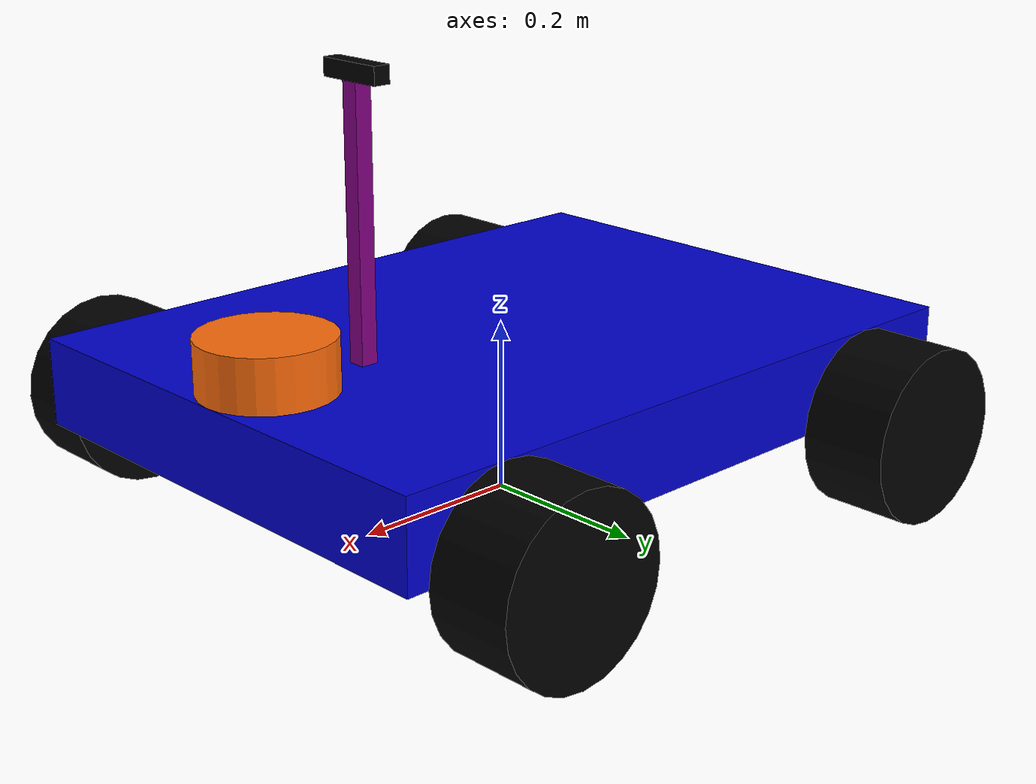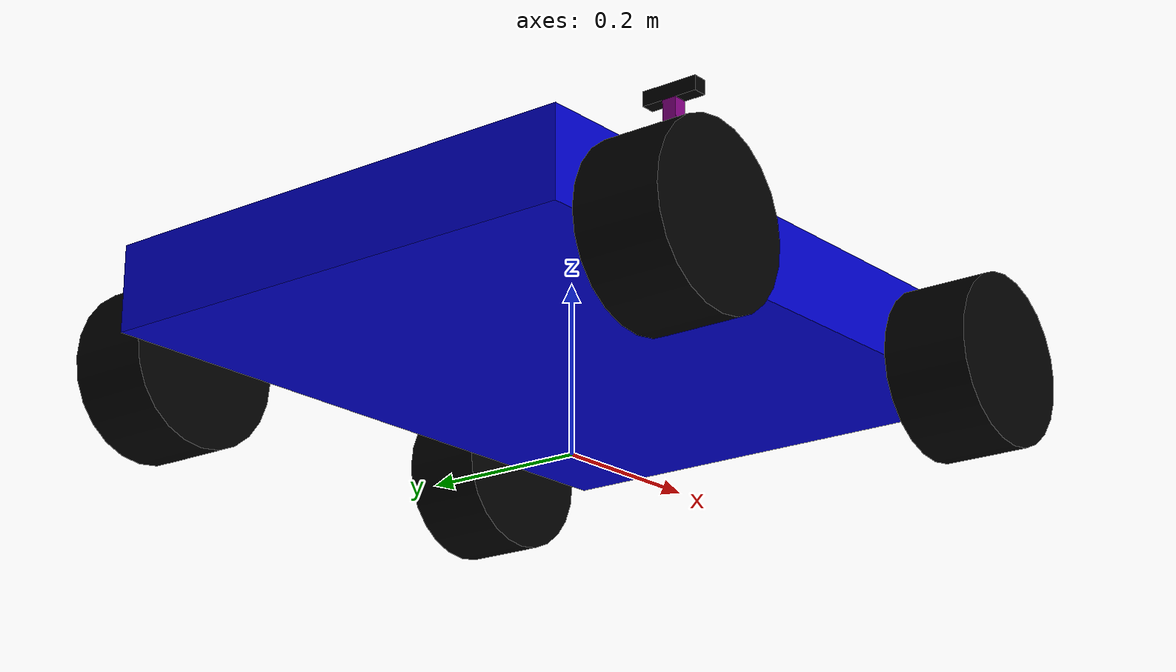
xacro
<?xml version="1.0"?>
<robot xmlns:xacro="http://www.ros.org/wiki/xacro" name="atreus">

<!--................................ XACRO CONSTANTS .............................. -->

<xacro:property name="chassis_height"                       value="0.1"/>
<xacro:property name="chassis_length"                       value="0.8"/>
<xacro:property name="chassis_width"                        value="0.6"/>
<xacro:property name="chassis_mass"                         value="10"/>

<xacro:property name="wheel_mass"                           value="1"/>
<xacro:property name="wheel_radius"                         value="0.1"/>
<xacro:property name="wheel_width"                          value="0.1"/>
<xacro:property name="wheel_pos"                            value="-0.175"/>
<xacro:property name="wheel_torque"                         value="100"/>

<xacro:arg      name="camera_enabled"                 		  default="true"/>
<xacro:property name="camera_height"                  		  value="0.3"/>
<xacro:property name="camera_horizontal_fov"          		  value="60"/>

<xacro:arg      name="two_d_lidar_enabled"                  default="true" />
<xacro:property name="two_d_lidar_update_rate"              value="50"/>
<xacro:property name="two_d_lidar_sample_size"              value="151"/>
<xacro:property name="two_d_lidar_min_angle"                value="-180"/>
<xacro:property name="two_d_lidar_max_angle"                value="180"/>
<xacro:property name="two_d_lidar_min_range"                value="0.1"/>
<xacro:property name="two_d_lidar_max_range"                value="16"/>

<!--................................ META CONSTANTS ................................ -->

<!-- Z distance to centre of the robot -->
<xacro:property name="chassis_ground_clearance"             value="${0.1+chassis_height/2}"/>
<xacro:property name="wheel_base"                           value="${wheel_pos-chassis_length/4+wheel_radius}"/>
<xacro:property name="wheel_separation"                     value="${wheel_width+chassis_width}"/>

<!-- ............................... LOAD MACROS ................................. -->

<xacro:include filename="$(find atreus)/urdf/atreus.gazebo.xacro"/>
<xacro:include filename="$(find atreus)/urdf/materials.xacro"/>
<xacro:include filename="$(find atreus)/urdf/macros.xacro"/>

<!-- ................................ BASE LINK .................................. -->

<link name="base_link">

  <collision name='collision'>
    <origin xyz="0 0 ${chassis_ground_clearance}" rpy="0 0 0" />
      <geometry>
        <box size="${chassis_length} ${chassis_width} ${chassis_height}"/>
      </geometry>
  </collision>

  <visual>
    <origin xyz="0 0 ${chassis_ground_clearance}" rpy="0 0 0" />
      <geometry>
        <box size="${chassis_length} ${chassis_width} ${chassis_height}"/>
      </geometry>
      <material name="blue"/>
  </visual>

  <inertial>
      <mass value="${chassis_mass}"/>
      <xacro:box_inertia m="${chassis_mass}" x="${chassis_length}" y="${chassis_width}" z = "${chassis_height}"/>
  </inertial>
</link>

<gazebo reference="base_link">
   <material>Gazebo/Blue</material>
</gazebo>

<!-- ................................ WHEELS ..................................... -->

<xacro:wheel cardinality="front" dexterity="left"  fb="-1"  lr ="1" />
<xacro:wheel cardinality="front" dexterity="right" fb="-1"  lr="-1" />
<xacro:wheel cardinality="back"  dexterity="left"  fb= "1"  lr ="1" />
<xacro:wheel cardinality="back"  dexterity="right" fb= "1"  lr="-1" />

<!-- ................................ CAMERA ..................................... -->

<xacro:if value="$(arg camera_enabled)">

  <!-- CAMERA HOLDER -->
  <link name="camera_holder">

    <visual>
      <origin xyz="0 0 0" rpy="0 0 0" />
        <geometry>
          <box size="0.02 0.02 ${camera_height}"/>
        </geometry>
        <material name="purple"/>
    </visual>

    <inertial>
        <mass value="0.01"/>
        <xacro:box_inertia m="0.01" x="0.02" y="0.02" z = "${camera_height}"/>
    </inertial>

  </link>

  <joint name="camera_holder_joint" type="fixed">
      <origin rpy="0 0 0" xyz="${chassis_length/4} 0 ${chassis_height/2+camera_height/2+chassis_ground_clearance}" />
      <parent link="base_link"/>
      <child link="camera_holder"/>
  </joint>

  <gazebo reference="camera_holder">
      <material>Gazebo/Purple</material>
  </gazebo>

  <!-- 3D CAMERA -->
    <link name="camera_link">

      <collision>
        <origin xyz="0 0 0" rpy="0 0 0" />
          <geometry>
            <box size="0.02 0.08 0.02"/>
          </geometry>
      </collision>

      <visual>
        <origin xyz="0 0 0" rpy="0 0 0" />
          <geometry>
            <box size="0.02 0.08 0.02"/>
          </geometry>
          <material name="black"/>
      </visual>

      <inertial>
          <mass value="0.01"/>
          <xacro:box_inertia m="0.01" x="0.02" y="0.08" z = "0.02"/>
      </inertial>

  </link>

  <joint name="camera_joint" type="fixed">
      <origin rpy="0 0 0" xyz="0 0 ${camera_height/2 + 0.02/2}" />
      <parent link="camera_holder"/>
      <child link="camera_link"/>
  </joint>

  <gazebo reference="camera_link">
      <material>Gazebo/Black</material>
  </gazebo>

</xacro:if>

<!-- ............................. 2D LIDAR ........................................ -->

<xacro:if value="$(arg two_d_lidar_enabled)">

  <link name="two_d_lidar">
      <collision>
        <origin xyz="0 0 0" rpy="0 0 0" />
        <geometry>
          <cylinder length="0.06" radius="0.075"/>
        </geometry>
      </collision>

      <visual>
        <origin xyz="0 0 0" rpy="0 0 0" />
        <geometry>
          <cylinder length="0.06" radius="0.075"/>
        </geometry>
        <material name="orange"/>
      </visual>

      <inertial>
        <origin xyz="0 0 0" rpy="0 0 0" />
        <mass value="0.1"/>
        <xacro:cylinder_inertia m="0.1" r="0.075" h="0.06"/>
      </inertial>
  </link>

  <joint name="two_d_lidar_joint" type="fixed">
    <parent link="base_link"/>
    <child link="two_d_lidar"/>
    <origin xyz="${chassis_length/2 - 0.075} 0 ${chassis_ground_clearance + chassis_height/2 + 0.06/2}" rpy="0 0 0" />
  </joint>

  <gazebo reference="two_d_lidar">
      <material>Gazebo/Orange</material>
  </gazebo>

</xacro:if>

</robot>

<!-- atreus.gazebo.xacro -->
<robot xmlns:xacro="http://www.ros.org/wiki/xacro" name="atreus">

<gazebo>
    <plugin filename="gz-sim-sensors-system" name="gz::sim::systems::Sensors">
        <render_engine>ogre2</render_engine>
    </plugin>

    <plugin filename="gz-sim-imu-system" name="gz::sim::systems::Imu">
    </plugin>

    <plugin filename="gz-sim-joint-state-publisher-system" name="gz::sim::systems::JointStatePublisher">
    </plugin>
</gazebo>

<!-- ..................... MECANUM DRIVE ........................................... -->

<gazebo>
  <plugin filename="gz-sim-mecanum-drive-system" name="gz::sim::systems::MecanumDrive">

    <front_left_joint>front_left_wheel_joint</front_left_joint>
    <front_right_joint>front_right_wheel_joint</front_right_joint>

    <back_left_joint>back_left_wheel_joint</back_left_joint>
    <back_right_joint>back_right_wheel_joint</back_right_joint>

    <wheelbase>${wheel_base}</wheelbase>
    <wheel_separation>${wheel_separation}</wheel_separation>
    <wheel_radius>${wheel_radius}</wheel_radius>

    <odom_publish_frequency>30</odom_publish_frequency>

    <topic>cmd_vel</topic>

    <odom_topic>encoder_odom</odom_topic>

    <tf_topic>/tf</tf_topic>
    <frame_id>odom</frame_id>
    <child_frame_id>base_link</child_frame_id>

  </plugin>

</gazebo>

<!-- ............................. GAZEBO ODOM .................................... -->

<gazebo>
    <plugin filename="libgz-sim-odometry-publisher-system"
        name="gz::sim::systems::OdometryPublisher">
        <odom_frame>odom</odom_frame>
        <robot_base_frame>base_link</robot_base_frame>
        <odom_topic>gazebo_odom</odom_topic>
        <tf_topic>/tf</tf_topic>
        <dimensions>2</dimensions>
        <odom_publish_frequency>10</odom_publish_frequency>
    </plugin>
</gazebo>

<!-- ............................... IMU ............................................ -->

<link name="imu_link"/>

<joint name="imu_joint" type="fixed">
	<parent link="base_link"/>
	<child link="imu_link"/>
</joint>

<gazebo reference="imu_link">

  <sensor name="imu_sensor" type="imu">
      <always_on>1</always_on>
      <update_rate>1</update_rate>
      <visualize>true</visualize>
      <topic>imu</topic>
      <ignition_frame_id>imu_frame</ignition_frame_id>
  </sensor>

</gazebo>

<!-- ............................... CAMERA .......................................... -->

<xacro:if value="$(arg camera_enabled)">

  <gazebo reference="camera_link">

    <sensor type="depth_camera" name="kinect_camera">
        <update_rate>30.0</update_rate>
        <topic>camera</topic>
        <gz_frame_id>camera_link</gz_frame_id>
        <camera>
            <camera_info_topic>camera_info</camera_info_topic>
            <horizontal_fov>${radians(camera_horizontal_fov)}</horizontal_fov>
            <image>
                <width>640</width>
                <height>480</height>
                <format>R8G8B8</format>
            </image>
            <clip>
                <near>0.05</near>
                <far>8.0</far>
            </clip>
        </camera>
    </sensor>

  </gazebo>

</xacro:if>

<!-- ........................... 2D LIDAR PLUGIN ................................... -->

<xacro:if value="$(arg two_d_lidar_enabled)">

  <gazebo reference="two_d_lidar">
      <sensor name='gpu_lidar' type='gpu_lidar'>
          <topic>scan</topic>
          <update_rate>${two_d_lidar_update_rate}</update_rate>
          <gz_frame_id>two_d_lidar</gz_frame_id>
          <lidar>
              <scan>
                  <horizontal>
                      <samples>${two_d_lidar_sample_size}</samples>
                      <resolution>1</resolution>
                      <min_angle>${radians(two_d_lidar_min_angle)}</min_angle>
                      <max_angle>${radians(two_d_lidar_max_angle)}</max_angle>
                  </horizontal>
              </scan>
              <range>
                  <min>${two_d_lidar_min_range}</min>
                  <max>${two_d_lidar_max_range}</max>
                  <resolution>0.01</resolution>
              </range>
              <noise>
                  <type>gaussian</type>
                  <mean>0.0</mean>
                  <stddev>0.001</stddev>
              </noise>
          </lidar>
          <always_on>1</always_on>
          <visualize>true</visualize>
      </sensor>
  </gazebo>

</xacro:if>

</robot>

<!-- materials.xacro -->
<robot xmlns:xacro="http://www.ros.org/wiki/xacro" name="atreus">

  <material name="black">
    <color rgba="0.0 0.0 0.0 1.0"/>
  </material>

  <material name="blue">
    <color rgba="0.0 0.0 0.8 1.0"/>
  </material>

  <material name="green">
    <color rgba="0.0 0.8 0.0 1.0"/>
  </material>

  <material name="yellow">
    <color rgba="1.0 1.0 0.0 1.0"/>
  </material>

  <material name="dark_grey">
    <color rgba="0.2 0.2 0.2 1.0"/>
  </material>

  <material name="orange">
    <color rgba="${255/255} ${108/255} ${10/255} 1.0"/>
  </material>

  <material name="brown">
    <color rgba="${139/255} ${69/255} ${19/255} 1.0"/>
  </material>

  <material name="red">
    <color rgba="0.8 0.0 0.0 1.0"/>
  </material>

  <material name="turquoise">
    <color rgba="${64/255} ${224/255} ${208/255} 1.0"/>
  </material>

  <material name="purple">
    <color rgba="${128/255} ${0/255} ${128/255} 1.0"/>
  </material>

  <material name="white">
    <color rgba="1.0 1.0 1.0 1.0"/>
  </material>

</robot>

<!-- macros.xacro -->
<robot xmlns:xacro="http://www.ros.org/wiki/xacro" name="atreus">

<!--................................ INERTIA MATRICES .............................. -->

  <xacro:macro name="cylinder_inertia" params="m r h">
    <inertia ixx="${m * (3 * r * r + h * h) / 12}" ixy="0" ixz="0"
      iyy="${m * (3 * r * r + h * h) / 12}" iyz="0"
      izz="${m * r * r / 2}"
    />
  </xacro:macro>

  <xacro:macro name="box_inertia" params="m x y z">
    <inertia ixx="${m * (y * y + z * z) / 12}" ixy="0" ixz="0"
      iyy="${m * (x * x + z * z) / 12}" iyz="0"
      izz="${m * (x * x + z * z) / 12}"
    />
  </xacro:macro>

  <xacro:macro name="sphere_inertia" params="m r">
    <inertia ixx="${2 * m * r * r / 5}" ixy="0" ixz="0"
      iyy="${2 * m * r * r / 5}" iyz="0"
      izz="${2 * m * r * r / 5}"
    />
  </xacro:macro>

<!-- ............................... WHEEL DEFINITION .............................. -->

 <xacro:macro name="wheel" params="cardinality dexterity fb lr">

   <link name="${cardinality}_${dexterity}_wheel">
    <collision>
      <origin xyz="0 0 0" rpy="0 ${pi/2} ${pi/2}" />
      <geometry>
       <cylinder length="${wheel_width}" radius="${wheel_radius}"/>
      </geometry>
    </collision>

    <visual>
      <origin xyz="0 0 0" rpy="0 ${pi/2} ${pi/2}" />
      <geometry>
       <cylinder length="${wheel_width}" radius="${wheel_radius}"/>
      </geometry>
      <material name="black"/>
    </visual>

    <inertial>
      <origin xyz="0 0 0" rpy="0 ${pi/2} ${pi/2}" />
      <mass value="${wheel_mass}"/>
      <xacro:cylinder_inertia m="${wheel_mass}" r="${wheel_radius}" h="${wheel_width}"/>
    </inertial>
   </link>

   <joint name="${cardinality}_${dexterity}_wheel_joint" type="continuous">
      <parent link="base_link"/>
      <child link="${cardinality}_${dexterity}_wheel"/>
      <origin xyz="${fb*(wheel_base)} ${lr*(wheel_separation/2)} ${wheel_radius}" rpy="0 0 0" />
      <axis xyz="0 1 0" rpy="0 0 0" />
    </joint>

   <gazebo reference="${cardinality}_${dexterity}_wheel">
      <material>Gazebo/Black</material>
   </gazebo>

  </xacro:macro>

</robot>
